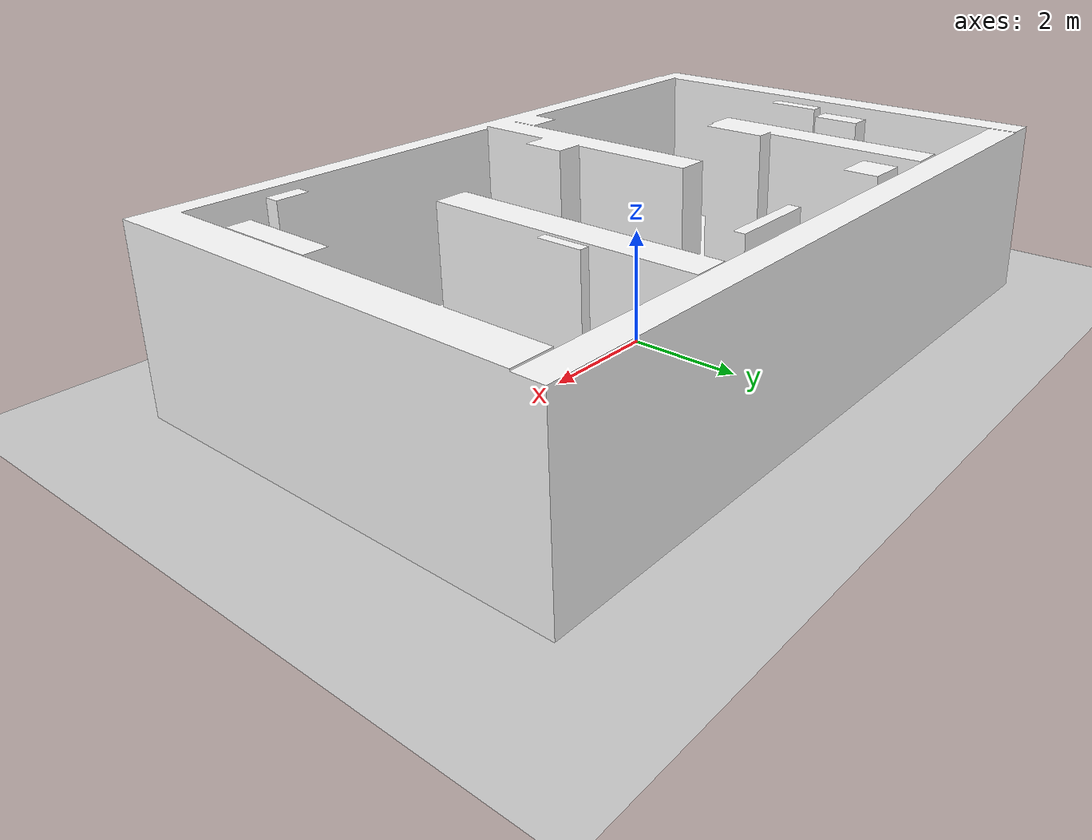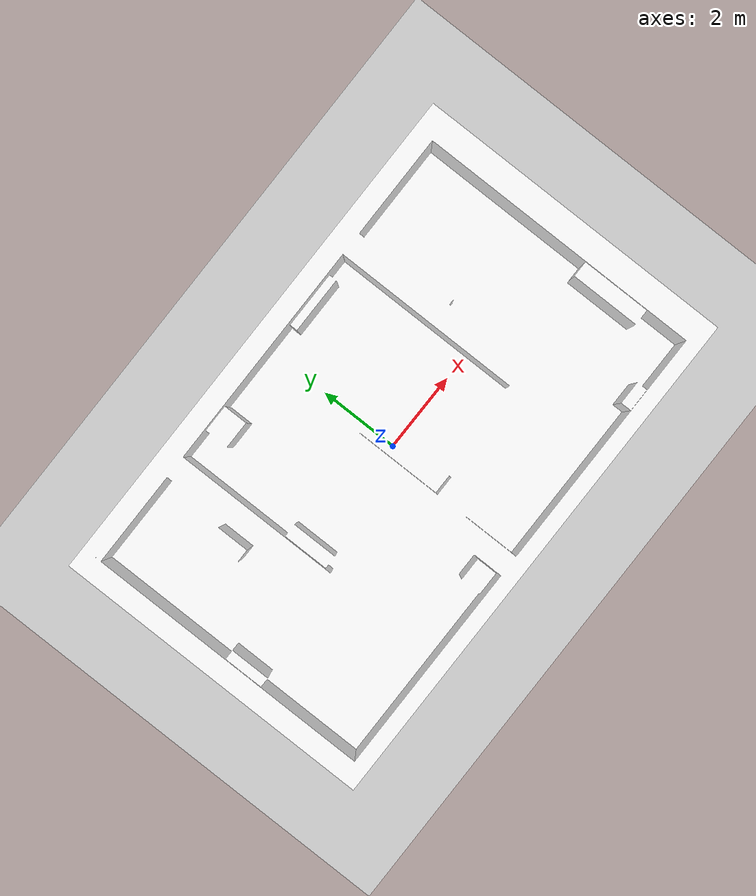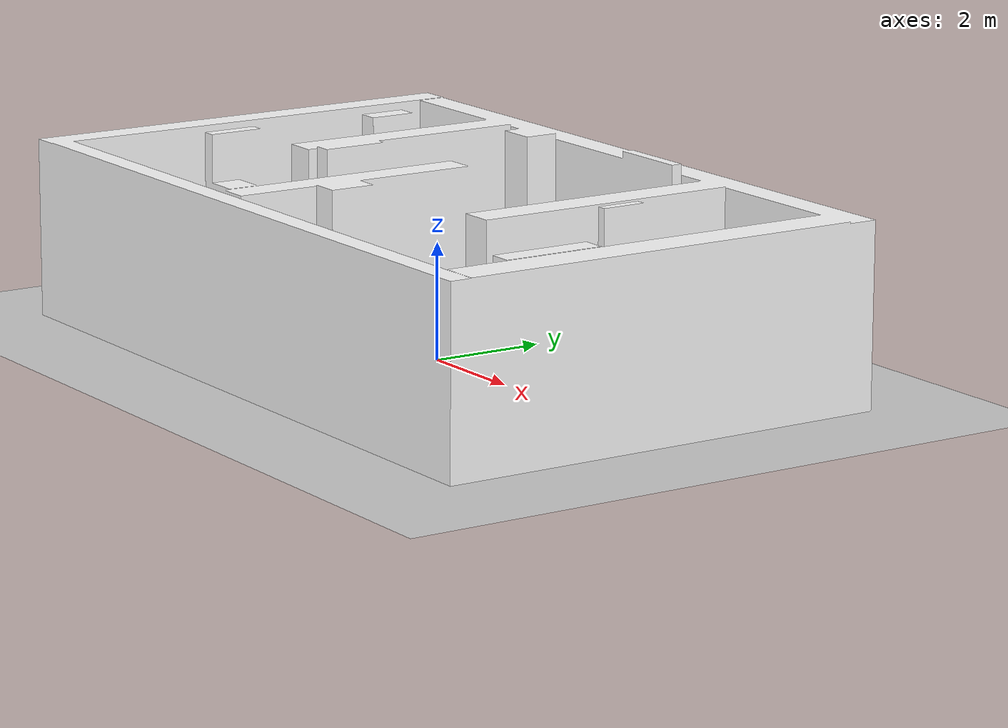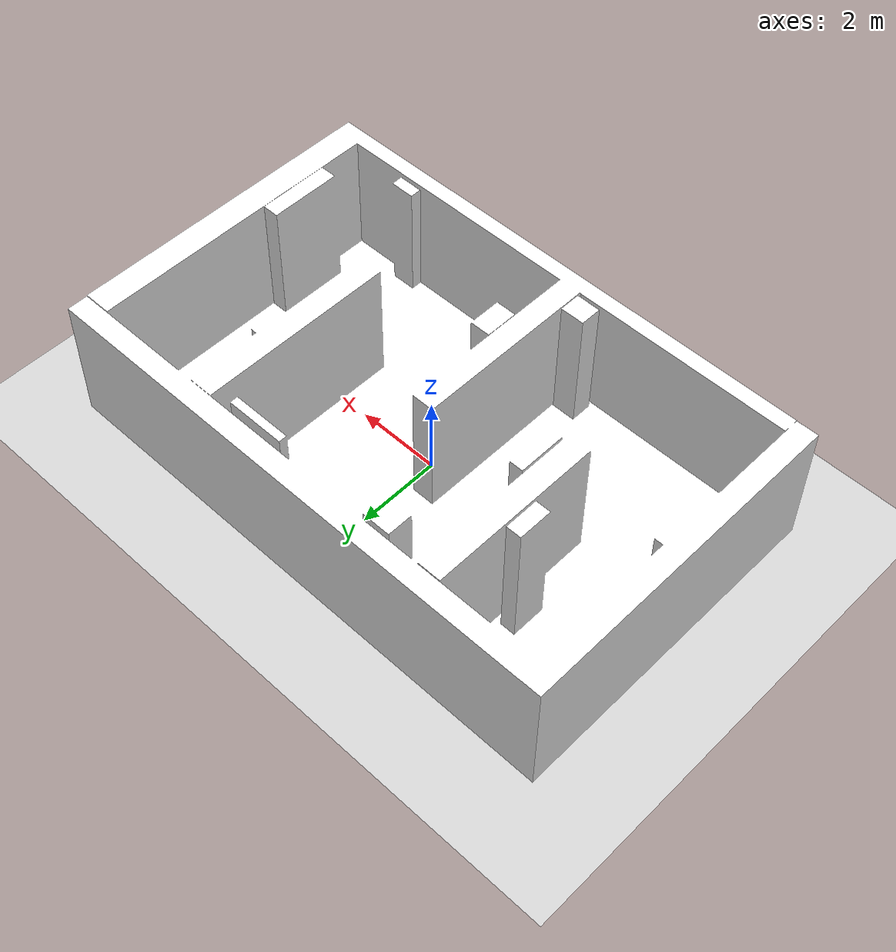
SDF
<sdf version='1.9'>
  <world name='default'>
    <physics type="ode">
      <max_step_size>0.004</max_step_size>
      <real_time_factor>1.0</real_time_factor>
      <real_time_update_rate>250</real_time_update_rate>
    </physics>
    <plugin name='gz::sim::systems::Physics' filename='gz-sim-physics-system'/>
    <plugin name='gz::sim::systems::UserCommands' filename='gz-sim-user-commands-system'/>
    <plugin name='gz::sim::systems::SceneBroadcaster' filename='gz-sim-scene-broadcaster-system'/>
    <plugin name='gz::sim::systems::Contact' filename='gz-sim-contact-system'/>
    <plugin name='gz::sim::systems::Imu' filename='gz-sim-imu-system'/>
    <plugin name='gz::sim::systems::AirPressure' filename='gz-sim-air-pressure-system'/>
    <plugin name='gz::sim::systems::ApplyLinkWrench' filename='gz-sim-apply-link-wrench-system'/>
    <plugin name='gz::sim::systems::NavSat' filename='gz-sim-navsat-system'/>
    <plugin name='gz::sim::systems::Sensors' filename='gz-sim-sensors-system'>
      <render_engine>ogre2</render_engine>
    </plugin>
    <gui fullscreen='false'>
      <plugin name='3D View' filename='GzScene3D'>
        <gz-gui>
          <title>3D View</title>
          <property type='bool' key='showTitleBar'>0</property>
          <property type='string' key='state'>docked</property>
        </gz-gui>
        <engine>ogre2</engine>
        <scene>scene</scene>
        <ambient_light>0.5984631152222222 0.5984631152222222 0.5984631152222222</ambient_light>
        <background_color>0.8984631152222222 0.8984631152222222 0.8984631152222222</background_color>
        <camera_pose>-6 0 6 0 0.5 0</camera_pose>
      </plugin>
      <plugin name='World control' filename='WorldControl'>
        <gz-gui>
          <title>World control</title>
          <property type='bool' key='showTitleBar'>0</property>
          <property type='bool' key='resizable'>0</property>
          <property type='double' key='height'>72</property>
          <property type='double' key='width'>121</property>
          <property type='double' key='z'>1</property>
          <property type='string' key='state'>floating</property>
          <anchors target='3D View'>
            <line own='left' target='left'/>
            <line own='bottom' target='bottom'/>
          </anchors>
        </gz-gui>
        <play_pause>1</play_pause>
        <step>1</step>
        <start_paused>1</start_paused>
      </plugin>
      <plugin name='World stats' filename='WorldStats'>
        <gz-gui>
          <title>World stats</title>
          <property type='bool' key='showTitleBar'>0</property>
          <property type='bool' key='resizable'>0</property>
          <property type='double' key='height'>110</property>
          <property type='double' key='width'>290</property>
          <property type='double' key='z'>1</property>
          <property type='string' key='state'>floating</property>
          <anchors target='3D View'>
            <line own='right' target='right'/>
            <line own='bottom' target='bottom'/>
          </anchors>
        </gz-gui>
        <sim_time>1</sim_time>
        <real_time>1</real_time>
        <real_time_factor>1</real_time_factor>
        <iterations>1</iterations>
      </plugin>
      <plugin name='Entity tree' filename='EntityTree'/>
    </gui>
    <gravity>0 0 -9.8</gravity>
    <magnetic_field>6e-06 2.3e-05 -4.2e-05</magnetic_field>
    <atmosphere type='adiabatic'/>
    <scene>
      <grid>false</grid>
      <ambient>0.4 0.4 0.4 1</ambient>
      <background>0.7 0.7 0.7 1</background>
      <shadows>true</shadows>
    </scene>
    <model name='ground_plane'>
      <static>true</static>
      <link name='link'>
        <collision name='collision'>
          <geometry>
            <plane>
              <normal>0 0 1</normal>
              <size>1 1</size>
            </plane>
          </geometry>
          <surface>
            <friction>
              <ode/>
            </friction>
            <bounce/>
            <contact/>
          </surface>
        </collision>
        <visual name='visual'>
          <geometry>
            <plane>
              <normal>0 0 1</normal>
              <size>100 100</size>
            </plane>
          </geometry>
          <material>
            <ambient>0.8 0.8 0.8 1</ambient>
            <diffuse>0.8 0.8 0.8 1</diffuse>
            <specular>0.8 0.8 0.8 1</specular>
          </material>
        </visual>
        <pose>0 0 0 0 -0 0</pose>
        <inertial>
          <pose>0 0 0 0 -0 0</pose>
          <mass>1</mass>
          <inertia>
            <ixx>1</ixx>
            <ixy>0</ixy>
            <ixz>0</ixz>
            <iyy>1</iyy>
            <iyz>0</iyz>
            <izz>1</izz>
          </inertia>
        </inertial>
        <enable_wind>false</enable_wind>
      </link>
      <pose>0 0 0 0 -0 0</pose>
      <self_collide>false</self_collide>
    </model>
    <model name="grundfos_model">
	    <include>
	      <uri>model://maze_room_xs</uri>
	    </include>
    </model>
    <light name='sunUTC' type='directional'>
      <pose>0 0 500 0 -0 0</pose>
      <cast_shadows>true</cast_shadows>
      <intensity>1</intensity>
      <direction>0.001 0.625 -0.78</direction>
      <diffuse>0.904 0.904 0.904 1</diffuse>
      <specular>0.271 0.271 0.271 1</specular>
      <attenuation>
        <range>2000</range>
        <linear>0</linear>
        <constant>1</constant>
        <quadratic>0</quadratic>
      </attenuation>
      <spot>
        <inner_angle>0</inner_angle>
        <outer_angle>0</outer_angle>
        <falloff>0</falloff>
      </spot>
    </light>
    <spherical_coordinates>
      <surface_model>EARTH_WGS84</surface_model>
      <world_frame_orientation>ENU</world_frame_orientation>
      <latitude_deg>47.397971057728974</latitude_deg>
      <longitude_deg> 8.546163739800146</longitude_deg>
      <altitude>0</altitude>
    </spherical_coordinates>
  </world>
</sdf>

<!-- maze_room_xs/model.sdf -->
<sdf version="1.8">
  <model name="test">
    <static>true</static>
    <link name="testlink">
      <visual name="Cube">
        <geometry>
          <mesh>
            <uri>meshes/model.dae</uri>
            <submesh>
              <name>Cube</name>
            </submesh>
          </mesh>
        </geometry>
        <material>
          <diffuse>1.0 1.0 1.0 1.0</diffuse>
          <specular>0.0 0.0 0.0 1.0</specular>
          <pbr>
            <metal>
              <albedo_map>meshes/grunge-wall-texture.jpg</albedo_map>
            </metal>
          </pbr>
        </material>
      </visual>
      <light name="Light" type="point">
        <diffuse>1.0 1.0 1.0 1.0</diffuse>
        <attenuation>
          <range>40.0</range>
          <linear>0.0</linear>
          <quadratic>0.0</quadratic>
          <constant>0.0</constant>
        </attenuation>
        <cast_shadows>true</cast_shadows>
        <intensity>1.0</intensity>
      </light>
      <collision name="collision">
        <geometry>
          <mesh>
            <uri>meshes/model.dae</uri>
          </mesh>
        </geometry>
        <surface>
          <contact>
            <collide_bitmask>0x01</collide_bitmask>
          </contact>
        </surface>
      </collision>
    </link>
  </model>
</sdf>
